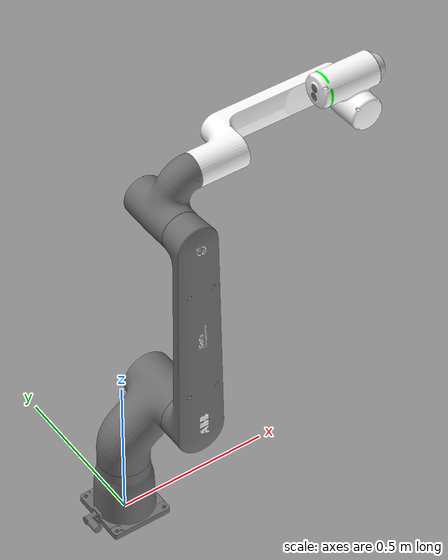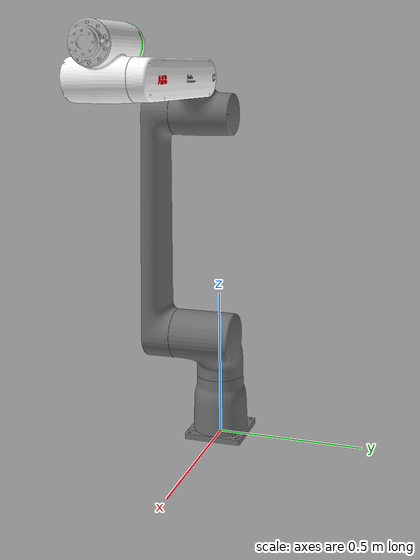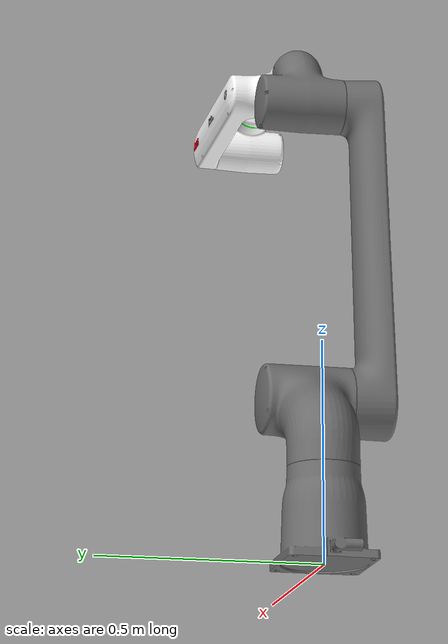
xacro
<?xml version="1.0"?>
<robot name="abb_gofa_crb15000_10_152" xmlns:xacro="http://ros.org/wiki/xacro">
  <!-- Arguments -->
  <xacro:arg name="use_fake_hardware" default="true"/>
  <xacro:property name="use_fake_hardware" value="$(arg use_fake_hardware)"/>
  <xacro:arg name="rws_ip" default="None"/>
  <xacro:property name="rws_ip" value="$(arg rws_ip)"/>
  <xacro:arg name="rws_port" default="80"/>
  <xacro:property name="rws_port" value="$(arg rws_port)"/>
  <xacro:arg name="configure_via_rws" default="false"/>
  <xacro:property name="configure_via_rws" value="$(arg configure_via_rws)"/>

  <!-- Robot description -->
  <xacro:include filename="$(find abb_gofa_crb15000_support)/urdf/gofa_crb15000_10_152_macro.xacro"/>
  <xacro:abb_gofa_crb15000_10_152 prefix=""/>

  <!-- ros2_control -->
  <xacro:include filename="$(find abb_gofa_crb15000_support)/urdf/gofa_crb15000.ros2_control.xacro" />
  <xacro:abb_ros2_control
    name="ABBMultiInterfaceHardware"
    prefix=""
    use_fake_hardware="${use_fake_hardware}"
    rws_ip="${rws_ip}"
    rws_port="${rws_port}"
    configure_via_rws="${configure_via_rws}"/>
</robot>

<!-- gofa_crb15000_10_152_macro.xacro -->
<robot xmlns:xacro="http://ros.org/wiki/xacro">
  <xacro:include filename="$(find abb_resources)/urdf/common_materials.xacro"/>

  <xacro:macro name="abb_gofa_crb15000_10_152" params="prefix">
    <!-- link list -->
    <link name="${prefix}base_link">
      <inertial>
        <mass value="13.5"/>
        <origin xyz="-0.025 0.000 0.110"/>
        <inertia ixx="0.10" ixy="0.0005" ixz="0.0003" iyy="0.14" iyz="-0.0002" izz="0.13"/>
      </inertial>
      <collision>
        <geometry>
          <mesh filename="package://abb_gofa_crb15000_support/meshes/gofa_crb15000_10_152/collision/base_link.stl"/>
        </geometry>
      </collision>
      <visual>
        <geometry>
          <mesh filename="package://abb_gofa_crb15000_support/meshes/gofa_crb15000_10_152/visual/base_link.dae"/>
        </geometry>
        <xacro:material_abb_yellow />
      </visual>
    </link>

    <link name="${prefix}link_1">
      <inertial>
        <mass value="11.8"/>
        <origin xyz="0.001 -0.001 -0.060"/>
        <inertia ixx="0.11" ixy="-0.00005" ixz="0.0003" iyy="0.09" iyz="-0.0001" izz="0.09"/>
      </inertial>
      <collision>
        <geometry>
          <mesh filename="package://abb_gofa_crb15000_support/meshes/gofa_crb15000_10_152/collision/link_1.stl"/>
        </geometry>
      </collision>
      <visual>
        <geometry>
          <mesh filename="package://abb_gofa_crb15000_support/meshes/gofa_crb15000_10_152/visual/link_1.dae"/>
        </geometry>
        <xacro:material_abb_yellow />
      </visual>
    </link>

    <link name="${prefix}link_2">
      <inertial>
        <mass value="17.5"/>
        <origin xyz="-0.001 0.000 0.250"/>
        <inertia ixx="0.49" ixy="0.00001" ixz="0.0002" iyy="0.46" iyz="-0.002" izz="0.09"/>
      </inertial>
      <collision>
        <geometry>
          <mesh filename="package://abb_gofa_crb15000_support/meshes/gofa_crb15000_10_152/collision/link_2.stl"/>
        </geometry>
      </collision>
      <visual>
        <geometry>
          <mesh filename="package://abb_gofa_crb15000_support/meshes/gofa_crb15000_10_152/visual/link_2.dae"/>
        </geometry>
        <xacro:material_abb_yellow />
      </visual>
    </link>

    <link name="${prefix}link_3">
      <inertial>
        <mass value="7.5"/>
        <origin xyz="0.100 0.001 0.032"/>
        <inertia ixx="0.025" ixy="0.0001" ixz="-0.0056" iyy="0.09" iyz="0.0001" izz="0.08"/>
      </inertial>
      <collision>
        <geometry>
          <mesh filename="package://abb_gofa_crb15000_support/meshes/gofa_crb15000_10_152/collision/link_3.stl"/>
        </geometry>
      </collision>
      <visual>
        <geometry>
          <mesh filename="package://abb_gofa_crb15000_support/meshes/gofa_crb15000_10_152/visual/link_3.dae"/>
        </geometry>
        <xacro:material_abb_yellow />
      </visual>
    </link>

    <link name="${prefix}link_4">
      <inertial>
        <mass value="2.7"/>
        <origin xyz="0.380 0.001 0.005"/>
        <inertia ixx="0.006" ixy="-0.0001" ixz="0.0004" iyy="0.012" iyz="-0.00002" izz="0.011"/>
      </inertial>
      <collision>
        <geometry>
          <mesh filename="package://abb_gofa_crb15000_support/meshes/gofa_crb15000_10_152/collision/link_4.stl"/>
        </geometry>
      </collision>
      <visual>
        <geometry>
          <mesh filename="package://abb_gofa_crb15000_support/meshes/gofa_crb15000_10_152/visual/link_4.dae"/>
        </geometry>
        <xacro:material_abb_yellow />
      </visual>
    </link>

    <link name="${prefix}link_5">
      <inertial>
        <mass value="0.63"/>
        <origin xyz="0.011 -0.001 0.000"/>
        <inertia ixx="0.0005" ixy="-0.00001" ixz="0.0" iyy="0.0011" iyz="0.0" izz="0.0009"/>
      </inertial>
      <collision>
        <geometry>
          <mesh filename="package://abb_gofa_crb15000_support/meshes/gofa_crb15000_10_152/collision/link_5.stl"/>
        </geometry>
      </collision>
      <visual>
        <geometry>
          <mesh filename="package://abb_gofa_crb15000_support/meshes/gofa_crb15000_10_152/visual/link_5.dae"/>
        </geometry>
        <xacro:material_abb_yellow />
      </visual>
    </link>

    <link name="${prefix}link_6">
      <inertial>
        <mass value="0.14"/>
        <origin xyz="-0.007 0.000 0.0" rpy="0 0 0"/>
        <inertia ixx="0.001" ixy="0" ixz="0" iyy="0.001" iyz="0" izz="0.001"/>
      </inertial>
      <collision>
        <geometry>
          <mesh filename="package://abb_gofa_crb15000_support/meshes/gofa_crb15000_10_152/collision/link_6.stl"/>
        </geometry>
      </collision>
      <visual>
        <geometry>
          <mesh filename="package://abb_gofa_crb15000_support/meshes/gofa_crb15000_10_152/visual/link_6.dae"/>
        </geometry>
        <xacro:material_abb_yellow />
      </visual>
    </link>
    <!-- end of link list -->

    <!-- joint list -->
    <!-- GoFa CRB15000-10/1.52 Joint Specifications -->
    <!-- xyz/rpy from Sunrise-Robotics abb_ros2 repository -->
    <!-- NOTE: effort=1000 is a placeholder. ABB GoFa CRB15000-10/1.52 rated torque ~30-60 Nm per joint. -->
    <!-- TODO: Replace with actual torque data from ABB documentation when available. -->
    <!-- Axis 1: ±270°, 120°/s -->
    <joint type="revolute" name="${prefix}joint_1">
      <origin xyz="0 0 0.218" rpy="0 0 0"/>
      <axis xyz="0 0 1"/>
      <parent link="${prefix}base_link"/>
      <child link="${prefix}link_1"/>
      <limit effort="1000" lower="${radians(-270)}" upper="${radians(270)}" velocity="${radians(120)}"/>
      <dynamics damping="5.0" friction="1.0"/>
    </joint>

    <!-- Axis 2: -140° to +90°, 120°/s -->
    <joint type="revolute" name="${prefix}joint_2">
      <origin xyz="0.150 0 0.182" rpy="0 0 0"/>
      <axis xyz="0 1 0"/>
      <parent link="${prefix}link_1"/>
      <child link="${prefix}link_2"/>
      <limit effort="1000" lower="${radians(-140)}" upper="${radians(90)}" velocity="${radians(120)}"/>
      <dynamics damping="5.0" friction="1.0"/>
    </joint>

    <!-- Axis 3: -225° to +85°, 125°/s -->
    <joint type="revolute" name="${prefix}joint_3">
      <origin xyz="0 0 0.707" rpy="0 0 0"/>
      <axis xyz="0 1 0"/>
      <parent link="${prefix}link_2"/>
      <child link="${prefix}link_3"/>
      <limit effort="1000" lower="${radians(-225)}" upper="${radians(85)}" velocity="${radians(125)}"/>
      <dynamics damping="5.0" friction="1.0"/>
    </joint>

    <!-- Axis 4: ±200°, 200°/s -->
    <joint type="revolute" name="${prefix}joint_4">
      <origin xyz="0 0 0.110" rpy="0 0 0"/>
      <axis xyz="1 0 0"/>
      <parent link="${prefix}link_3"/>
      <child link="${prefix}link_4"/>
      <limit effort="1000" lower="${radians(-200)}" upper="${radians(200)}" velocity="${radians(200)}"/>
      <dynamics damping="5.0" friction="1.0"/>
    </joint>

    <!-- Axis 5: ±130°, 200°/s -->
    <joint type="revolute" name="${prefix}joint_5">
      <origin xyz="0.637 0 0" rpy="0 0 0"/>
      <axis xyz="0 1 0"/>
      <parent link="${prefix}link_4"/>
      <child link="${prefix}link_5"/>
      <limit effort="1000" lower="${radians(-130)}" upper="${radians(130)}" velocity="${radians(200)}"/>
      <dynamics damping="2.0" friction="1.0"/>
    </joint>

    <!-- Axis 6: ±270°, 200°/s -->
    <joint type="revolute" name="${prefix}joint_6">
      <origin xyz="0.101 0 0.080" rpy="0 0 0"/>
      <axis xyz="1 0 0"/>
      <parent link="${prefix}link_5"/>
      <child link="${prefix}link_6"/>
      <limit effort="1000" lower="${radians(-270)}" upper="${radians(270)}" velocity="${radians(200)}"/>
      <dynamics damping="1.0" friction="1.0"/>
    </joint>
    <!-- end of joint list -->

    <!-- ROS-Industrial 'base' frame: base_link to ABB World Coordinates transform -->
    <link name="${prefix}base" />
    <joint name="${prefix}base_link-base" type="fixed">
      <origin xyz="0 0 0" rpy="0 0 0"/>
      <parent link="${prefix}base_link"/>
      <child link="${prefix}base"/>
    </joint>

    <!-- ROS-Industrial 'flange' frame: attachment point for EEF models -->
    <link name="${prefix}flange"/>
    <joint type="fixed" name="${prefix}joint_6-flange">
      <origin xyz="0 0 0" rpy="0 0 0"/>
      <parent link="${prefix}link_6"/>
      <child link="${prefix}flange"/>
    </joint>

    <!-- ROS-Industrial 'tool0' frame: all-zeros tool frame -->
    <link name="${prefix}tool0" />
    <joint name="${prefix}flange-tool0" type="fixed">
      <origin xyz="0 0 0" rpy="0 ${radians(90)} 0" />
      <parent link="${prefix}flange" />
      <child link="${prefix}tool0" />
    </joint>
  </xacro:macro>
</robot>
